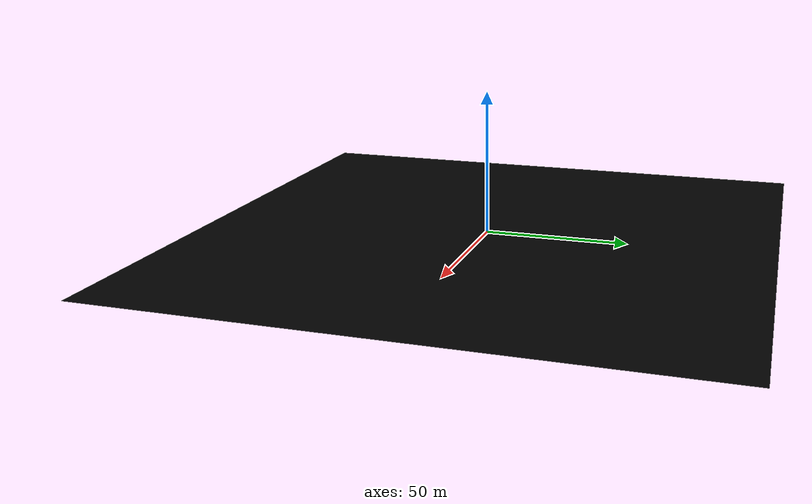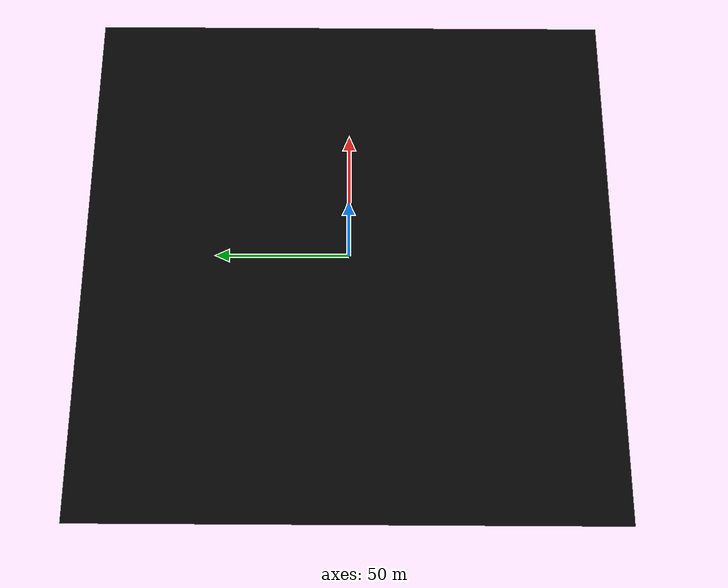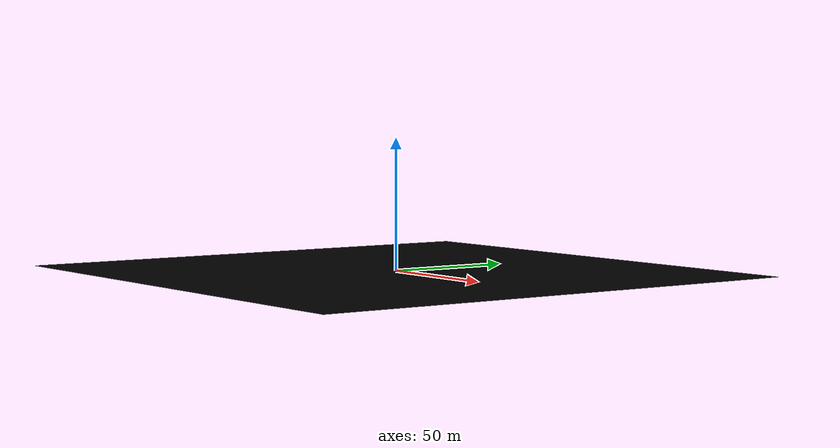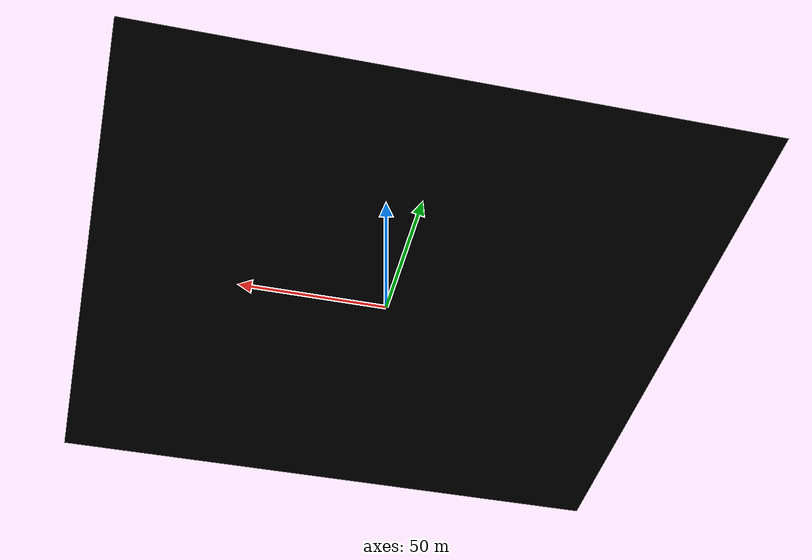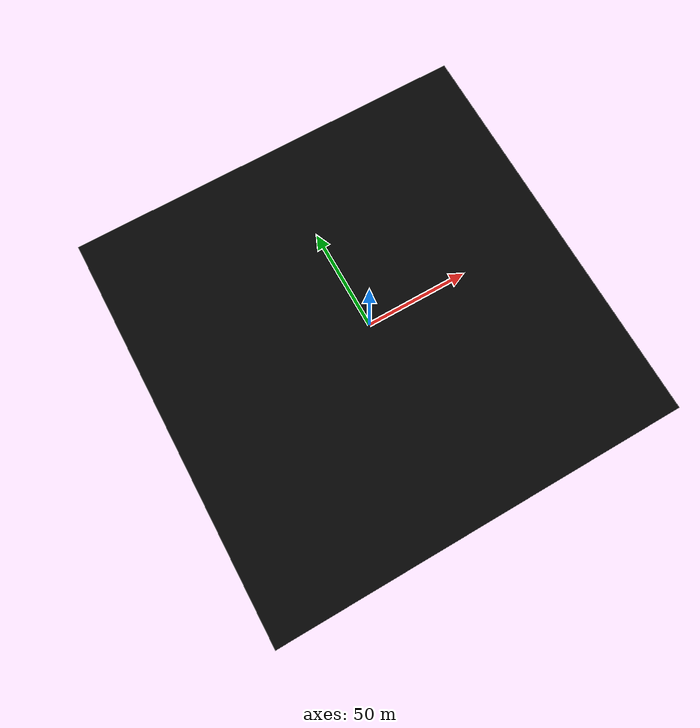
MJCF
<mujoco>
  <compiler angle="radian" assetdir="assets"/>
  <option>
    <flag/>
  </option>
  <statistic/>
  <asset>
    <texture type="2d" colorspace="sRGB" name="rubber_tiles_diff_1k" file="rubber_tiles_diff_1k.png"/>
    <texture type="2d" colorspace="linear" name="rubber_tiles_nor_gl_1k" file="rubber_tiles_nor_gl_1k.png"/>
    <texture type="2d" colorspace="linear" name="rubber_tiles_arm_1k" file="rubber_tiles_arm_1k.png"/>
    <material name="template" rgba="0.9063318 0.9063318 0.9063318 1.0" reflectance="0.5" roughness="0.5" metallic="0.0"/>
    <material name="Floor" rgba="0.01 0.01 0.01 1.0" reflectance="0.5" roughness="0.3" metallic="0.0" texuniform="true" texrepeat="200.0 200.0">
      <layer texture="rubber_tiles_diff_1k" role="rgb"/>
      <layer texture="rubber_tiles_nor_gl_1k" role="normal"/>
    </material>
    <mesh name="Plane" file="Plane.obj"/>
  </asset>
  <worldbody>
    <geom name="FLG_Plane" pos="0.0 0.0 0.0" quat="1.0 0.0 0.0 0.0" type="plane" size="0.0 0.0 0.01" material="template" group="3"/>
    <geom name="GEO_Plane" pos="0.0 0.0 0.0" quat="1.0 0.0 0.0 0.0" type="mesh" mesh="Plane" material="Floor" group="2" contype="0" conaffinity="0"/>
  </worldbody>
</mujoco>
